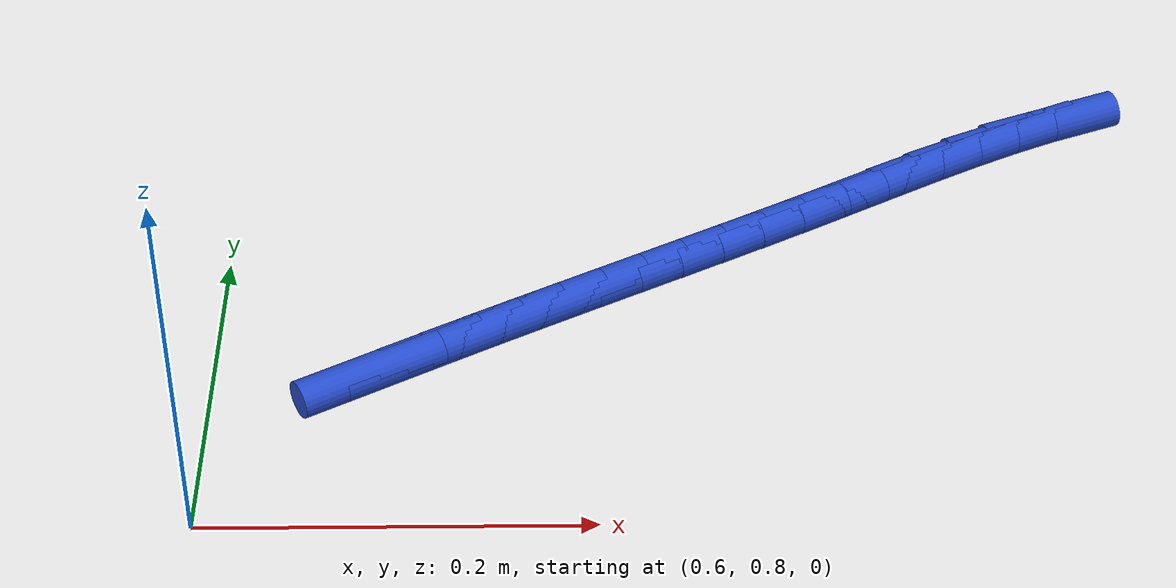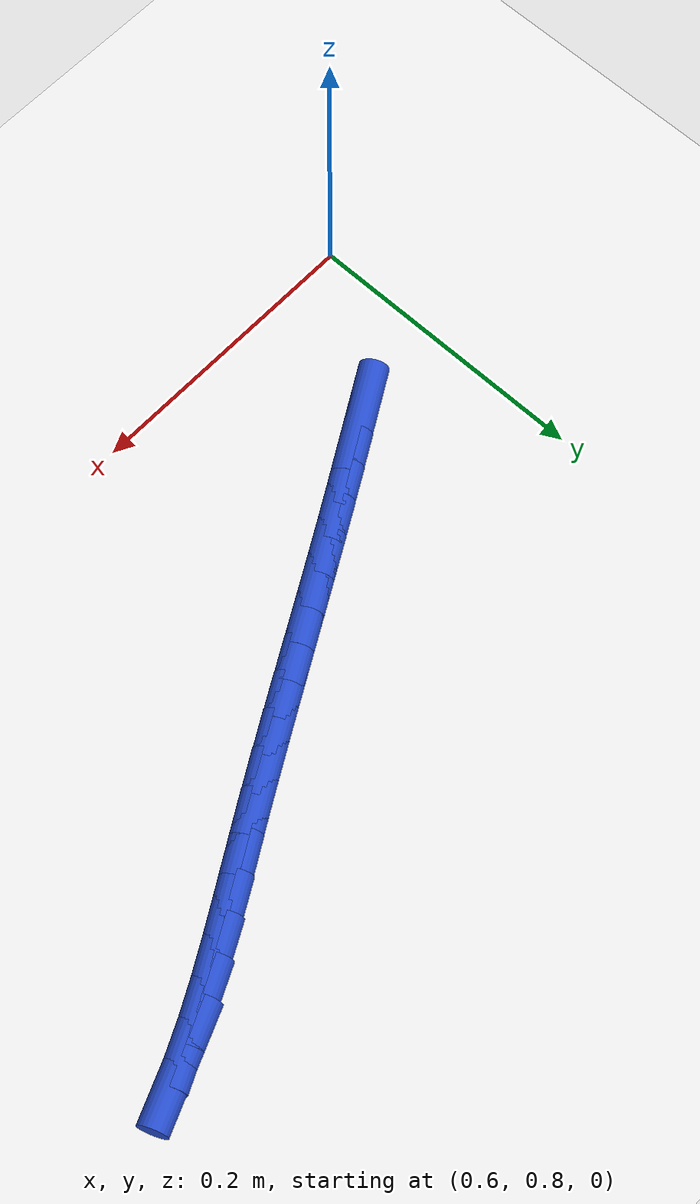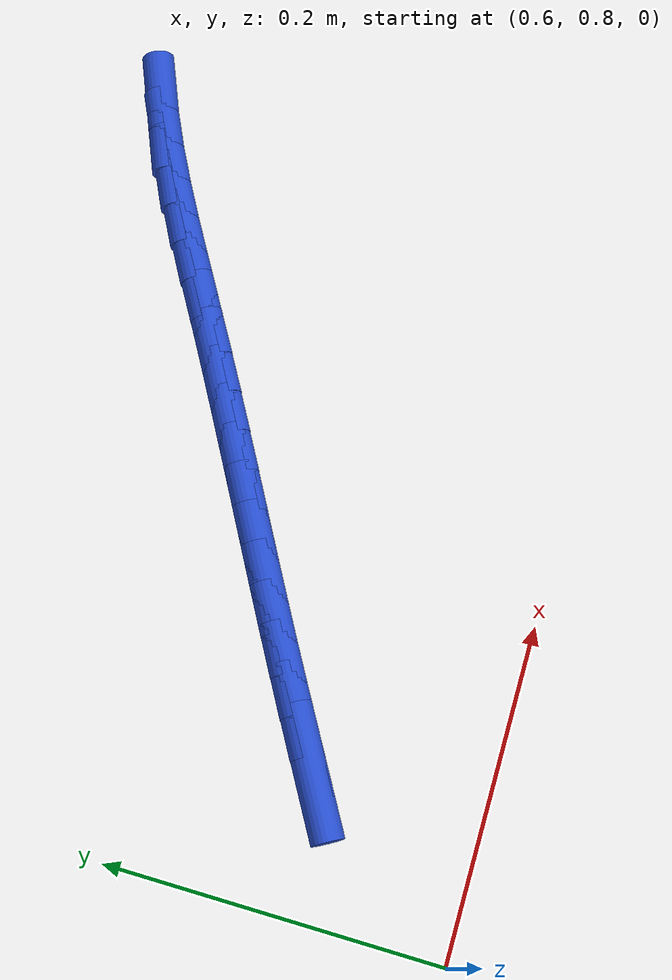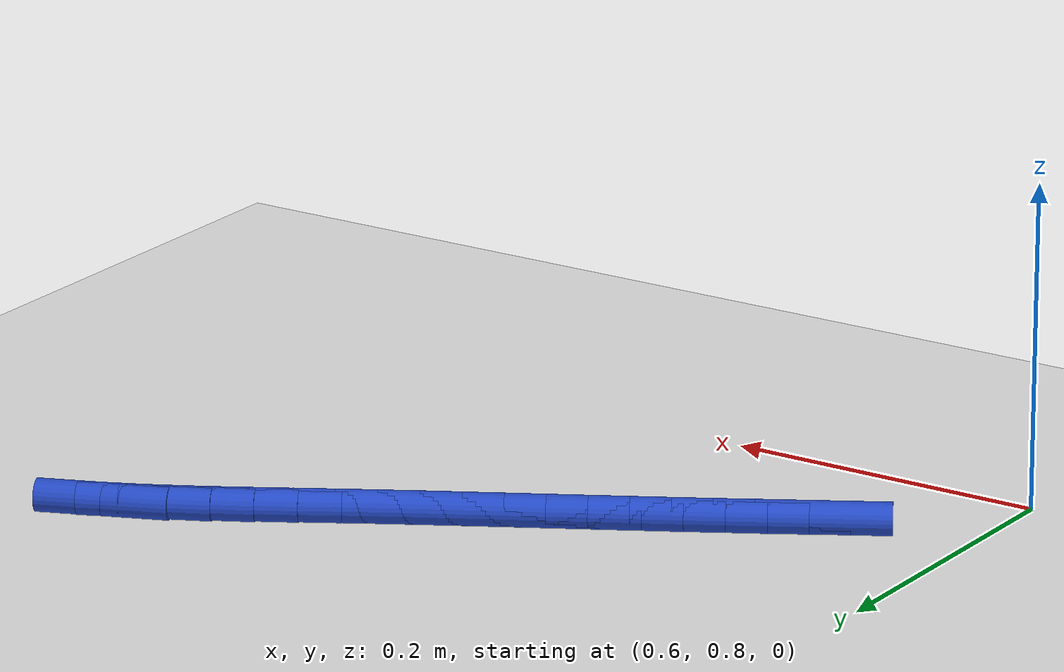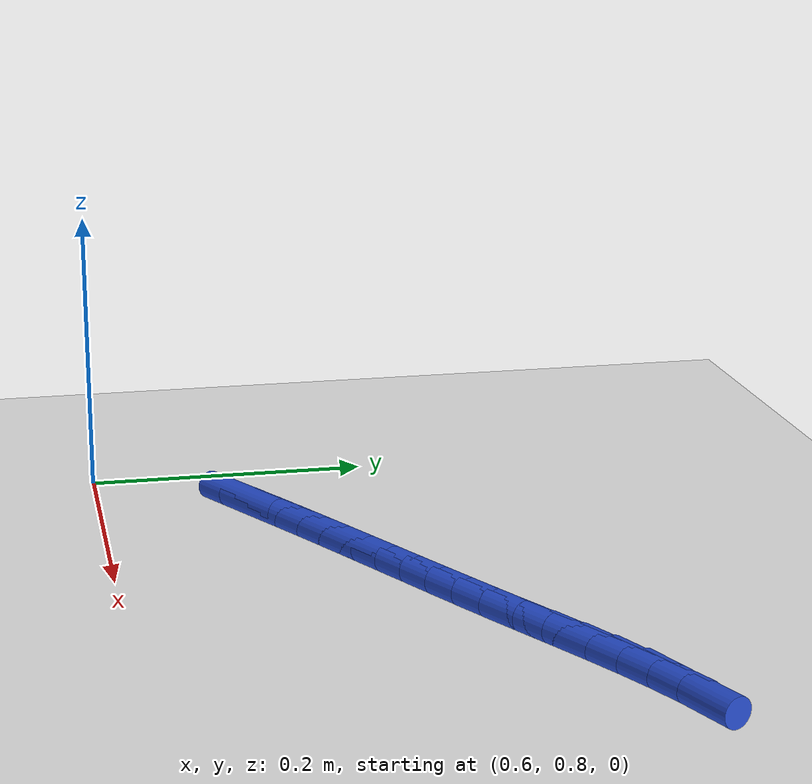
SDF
<sdf version="1.6">
 <world name="default">
  <model name="ground_plane">
   <static>1</static>
   <link name="link">
    <collision name="collision">
     <geometry><plane><normal>0 0 1</normal><size>100 100</size></plane></geometry>
     <surface><friction><ode><mu>100</mu><mu2>50</mu2></ode></friction></surface>
    </collision>
    <visual name="visual">
     <cast_shadows>0</cast_shadows>
     <geometry><plane><normal>0 0 1</normal><size>100 100</size></plane></geometry>
     <material>
      <script><uri>file://media/materials/scripts/gazebo.material</uri><name>Gazebo/WhiteGlow</name></script>
     </material>
    </visual>
   </link>
  </model>
  <model name="line">
   <link name="link_50">
    <pose>0.681076785275928 0.9013640876520587 0.01 0 1.57 0.5240140848626647</pose>
    <collision name="collision">
     <geometry><cylinder><radius>0.01</radius><length>0.08</length></cylinder></geometry>
    </collision>
    <visual name="visual">
     <material>
      <script><name>Gazebo/Blue</name><uri>file://media/materials/scripts/gazebo.material</uri></script>
     </material>
     <geometry><cylinder><radius>0.01</radius><length>0.08</length></cylinder></geometry>
    </visual>
   </link>
   <link name="link_51">
    <pose>0.7019908532350694 0.9134504142712542 0.01 0 1.57 0.5243705593597168</pose>
    <collision name="collision">
     <geometry><cylinder><radius>0.01</radius><length>0.08</length></cylinder></geometry>
    </collision>
    <visual name="visual">
     <material>
      <script><name>Gazebo/Blue</name><uri>file://media/materials/scripts/gazebo.material</uri></script>
     </material>
     <geometry><cylinder><radius>0.01</radius><length>0.08</length></cylinder></geometry>
    </visual>
   </link>
   <link name="link_52">
    <pose>0.7229022664940031 0.9255451527281076 0.01 0 1.57 0.5189736775174607</pose>
    <collision name="collision">
     <geometry><cylinder><radius>0.01</radius><length>0.08</length></cylinder></geometry>
    </collision>
    <visual name="visual">
     <material>
      <script><name>Gazebo/Blue</name><uri>file://media/materials/scripts/gazebo.material</uri></script>
     </material>
     <geometry><cylinder><radius>0.01</radius><length>0.08</length></cylinder></geometry>
    </visual>
   </link>
   <link name="link_53">
    <pose>0.7439206881929213 0.9375508720784255 0.01 0 1.57 0.5131259821484414</pose>
    <collision name="collision">
     <geometry><cylinder><radius>0.01</radius><length>0.08</length></cylinder></geometry>
    </collision>
    <visual name="visual">
     <material>
      <script><name>Gazebo/Blue</name><uri>file://media/materials/scripts/gazebo.material</uri></script>
     </material>
     <geometry><cylinder><radius>0.01</radius><length>0.08</length></cylinder></geometry>
    </visual>
   </link>
   <link name="link_54">
    <pose>0.7650701082723669 0.9494679350486956 0.01 0 1.57 0.5088966237593365</pose>
    <collision name="collision">
     <geometry><cylinder><radius>0.01</radius><length>0.08</length></cylinder></geometry>
    </collision>
    <visual name="visual">
     <material>
      <script><name>Gazebo/Blue</name><uri>file://media/materials/scripts/gazebo.material</uri></script>
     </material>
     <geometry><cylinder><radius>0.01</radius><length>0.08</length></cylinder></geometry>
    </visual>
   </link>
   <link name="link_55">
    <pose>0.7863408606031678 0.9613351218706637 0.01 0 1.57 0.5062799331284847</pose>
    <collision name="collision">
     <geometry><cylinder><radius>0.01</radius><length>0.08</length></cylinder></geometry>
    </collision>
    <visual name="visual">
     <material>
      <script><name>Gazebo/Blue</name><uri>file://media/materials/scripts/gazebo.material</uri></script>
     </material>
     <geometry><cylinder><radius>0.01</radius><length>0.08</length></cylinder></geometry>
    </visual>
   </link>
   <link name="link_56">
    <pose>0.8077231990660553 0.9731913040826359 0.01 0 1.57 0.5052611219251432</pose>
    <collision name="collision">
     <geometry><cylinder><radius>0.01</radius><length>0.08</length></cylinder></geometry>
    </collision>
    <visual name="visual">
     <material>
      <script><name>Gazebo/Blue</name><uri>file://media/materials/scripts/gazebo.material</uri></script>
     </material>
     <geometry><cylinder><radius>0.01</radius><length>0.08</length></cylinder></geometry>
    </visual>
   </link>
   <link name="link_57">
    <pose>0.8292073775417609 0.9850753532229184 0.01 0 1.57 0.5058215385313971</pose>
    <collision name="collision">
     <geometry><cylinder><radius>0.01</radius><length>0.08</length></cylinder></geometry>
    </collision>
    <visual name="visual">
     <material>
      <script><name>Gazebo/Blue</name><uri>file://media/materials/scripts/gazebo.material</uri></script>
     </material>
     <geometry><cylinder><radius>0.01</radius><length>0.08</length></cylinder></geometry>
    </visual>
   </link>
   <link name="link_58">
    <pose>0.8507836499110153 0.9970261408298173 0.01 0 1.57 0.5079389028882587</pose>
    <collision name="collision">
     <geometry><cylinder><radius>0.01</radius><length>0.08</length></cylinder></geometry>
    </collision>
    <visual name="visual">
     <material>
      <script><name>Gazebo/Blue</name><uri>file://media/materials/scripts/gazebo.material</uri></script>
     </material>
     <geometry><cylinder><radius>0.01</radius><length>0.08</length></cylinder></geometry>
    </visual>
   </link>
   <link name="link_59">
    <pose>0.8724422700545508 1.0090825384416393 0.01 0 1.57 0.5115874414179808</pose>
    <collision name="collision">
     <geometry><cylinder><radius>0.01</radius><length>0.08</length></cylinder></geometry>
    </collision>
    <visual name="visual">
     <material>
      <script><name>Gazebo/Blue</name><uri>file://media/materials/scripts/gazebo.material</uri></script>
     </material>
     <geometry><cylinder><radius>0.01</radius><length>0.08</length></cylinder></geometry>
    </visual>
   </link>
   <link name="link_60">
    <pose>0.8941734918530978 1.02128341759669 0.01 0 1.57 0.5167379319178707</pose>
    <collision name="collision">
     <geometry><cylinder><radius>0.01</radius><length>0.08</length></cylinder></geometry>
    </collision>
    <visual name="visual">
     <material>
      <script><name>Gazebo/Blue</name><uri>file://media/materials/scripts/gazebo.material</uri></script>
     </material>
     <geometry><cylinder><radius>0.01</radius><length>0.08</length></cylinder></geometry>
    </visual>
   </link>
   <link name="link_61">
    <pose>0.9159675691873881 1.033667649833276 0.01 0 1.57 0.5233528952993878</pose>
    <collision name="collision">
     <geometry><cylinder><radius>0.01</radius><length>0.08</length></cylinder></geometry>
    </collision>
    <visual name="visual">
     <material>
      <script><name>Gazebo/Blue</name><uri>file://media/materials/scripts/gazebo.material</uri></script>
     </material>
     <geometry><cylinder><radius>0.01</radius><length>0.08</length></cylinder></geometry>
    </visual>
   </link>
   <link name="link_62">
    <pose>0.937814773648279 1.046273977830073 0.01 0 1.57 0.5283934004789227</pose>
    <collision name="collision">
     <geometry><cylinder><radius>0.01</radius><length>0.08</length></cylinder></geometry>
    </collision>
    <visual name="visual">
     <material>
      <script><name>Gazebo/Blue</name><uri>file://media/materials/scripts/gazebo.material</uri></script>
     </material>
     <geometry><cylinder><radius>0.01</radius><length>0.08</length></cylinder></geometry>
    </visual>
   </link>
   <link name="link_63">
    <pose>0.959716609713695 1.0590594133029685 0.01 0 1.57 0.5237648150838516</pose>
    <collision name="collision">
     <geometry><cylinder><radius>0.01</radius><length>0.08</length></cylinder></geometry>
    </collision>
    <visual name="visual">
     <material>
      <script><name>Gazebo/Blue</name><uri>file://media/materials/scripts/gazebo.material</uri></script>
     </material>
     <geometry><cylinder><radius>0.01</radius><length>0.08</length></cylinder></geometry>
    </visual>
   </link>
   <link name="link_64">
    <pose>0.9817050457827852 1.0717593111847443 0.01 0 1.57 0.5080652768700663</pose>
    <collision name="collision">
     <geometry><cylinder><radius>0.01</radius><length>0.08</length></cylinder></geometry>
    </collision>
    <visual name="visual">
     <material>
      <script><name>Gazebo/Blue</name><uri>file://media/materials/scripts/gazebo.material</uri></script>
     </material>
     <geometry><cylinder><radius>0.01</radius><length>0.08</length></cylinder></geometry>
    </visual>
   </link>
   <link name="link_65">
    <pose>1.003817164879171 1.0840718121835666 0.01 0 1.57 0.48097935337884307</pose>
    <collision name="collision">
     <geometry><cylinder><radius>0.01</radius><length>0.08</length></cylinder></geometry>
    </collision>
    <visual name="visual">
     <material>
      <script><name>Gazebo/Blue</name><uri>file://media/materials/scripts/gazebo.material</uri></script>
     </material>
     <geometry><cylinder><radius>0.01</radius><length>0.08</length></cylinder></geometry>
    </visual>
   </link>
   <link name="link_66">
    <pose>1.0260900500264734 1.0956950570076012 0.01 0 1.57 0.44194150988343367</pose>
    <collision name="collision">
     <geometry><cylinder><radius>0.01</radius><length>0.08</length></cylinder></geometry>
    </collision>
    <visual name="visual">
     <material>
      <script><name>Gazebo/Blue</name><uri>file://media/materials/scripts/gazebo.material</uri></script>
     </material>
     <geometry><cylinder><radius>0.01</radius><length>0.08</length></cylinder></geometry>
    </visual>
   </link>
   <link name="link_67">
    <pose>1.0485607842483144 1.106327186365014 0.01 0 1.57 0.3902214711271216</pose>
    <collision name="collision">
     <geometry><cylinder><radius>0.01</radius><length>0.08</length></cylinder></geometry>
    </collision>
    <visual name="visual">
     <material>
      <script><name>Gazebo/Blue</name><uri>file://media/materials/scripts/gazebo.material</uri></script>
     </material>
     <geometry><cylinder><radius>0.01</radius><length>0.08</length></cylinder></geometry>
    </visual>
   </link>
  </model>
 </world>
</sdf>
